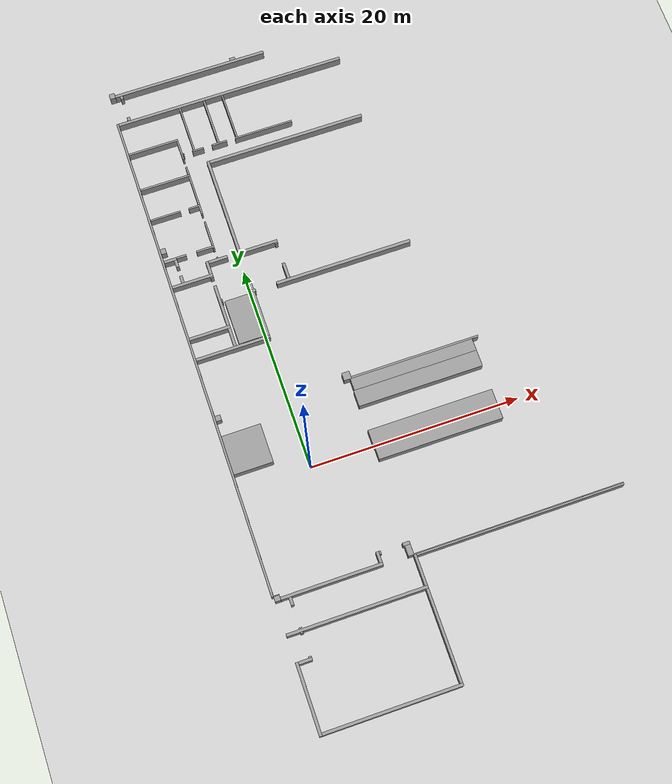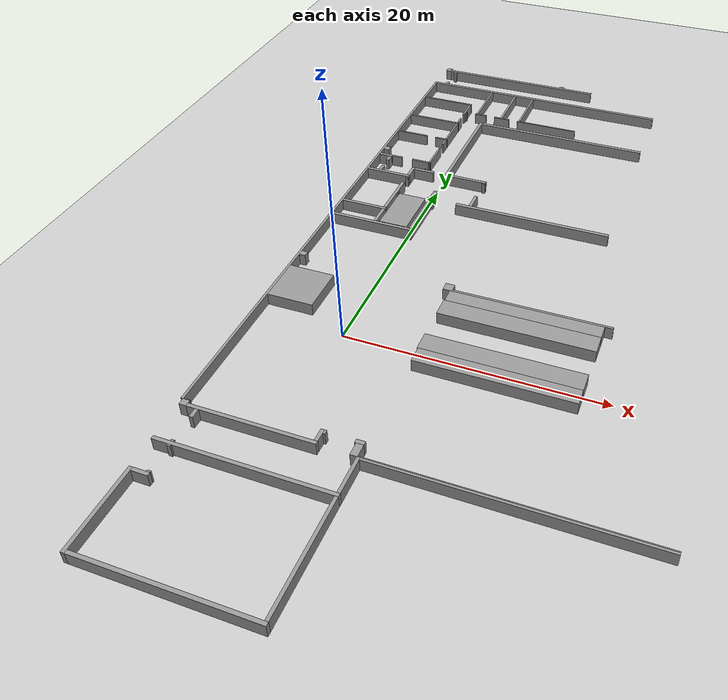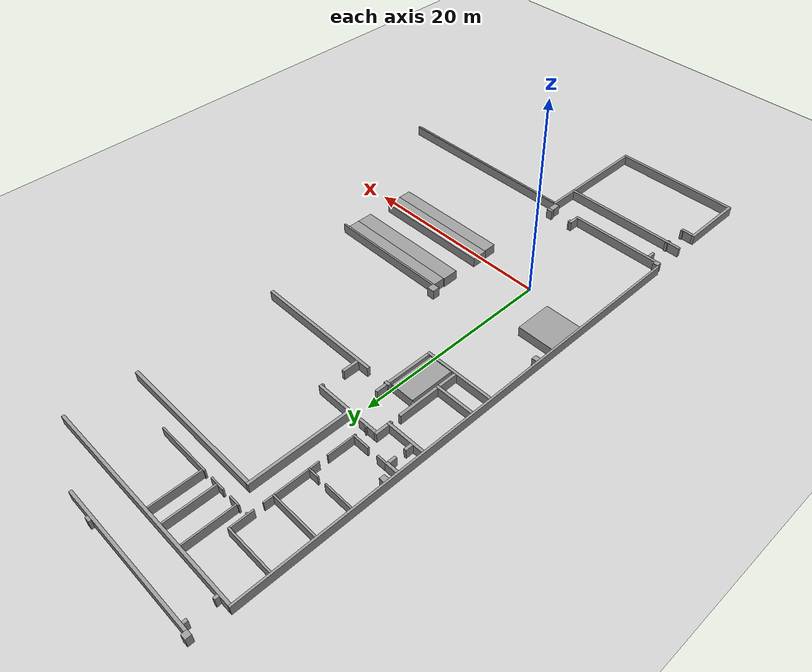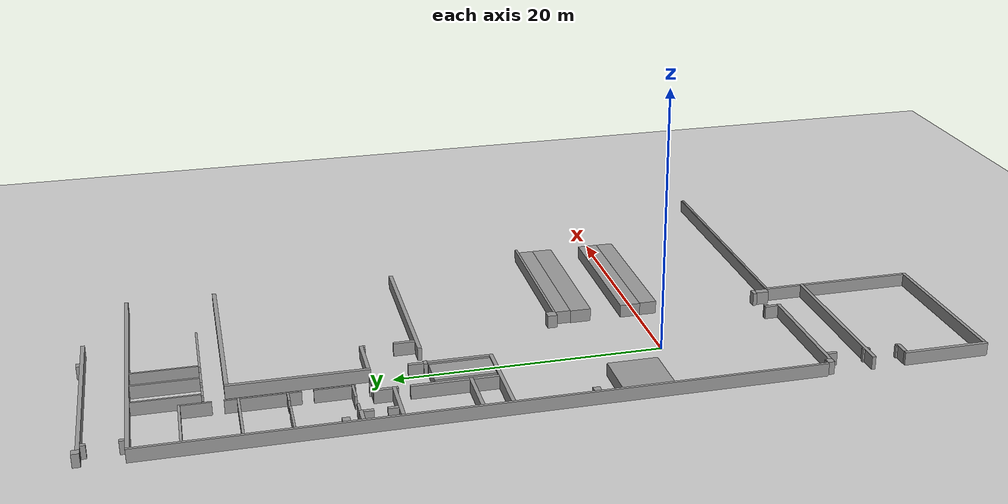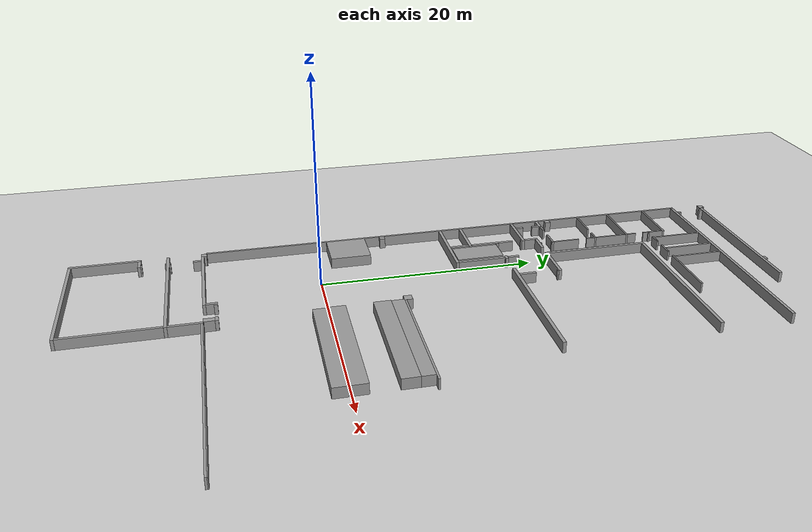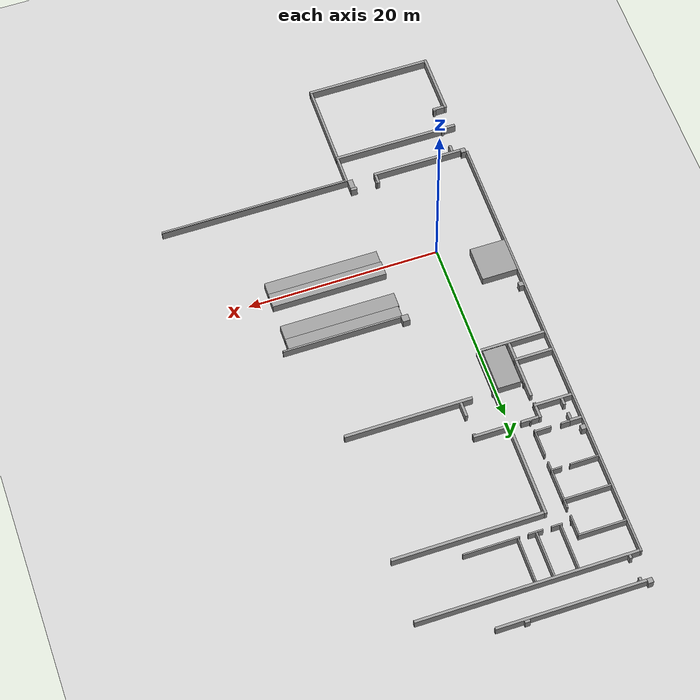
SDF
<sdf version="1.4">
 <world name="default">
  <model name="ground_plane">
   <static>1</static>
   <link name="link">
    <collision name="collision">
     <geometry><plane><normal>0 0 1</normal><size>100 100</size></plane></geometry>
     <surface><friction><ode><mu>100</mu><mu2>50</mu2></ode></friction></surface>
    </collision>
    <visual name="visual">
     <cast_shadows>0</cast_shadows>
     <geometry><plane><normal>0 0 1</normal><size>100 100</size></plane></geometry>
     <material>
      <script><uri>file://media/materials/scripts/gazebo.material</uri><name>Gazebo/Grey</name></script>
     </material>
    </visual>
    <velocity_decay><linear>0</linear><angular>0</angular></velocity_decay>
   </link>
  </model>
  <model name="walls">
   <static>1</static>
   <link name="Wall_0">
    <collision name="Wall_0_Collision">
     <geometry><box><size>48.5106 0.20426 1</size></box></geometry>
     <pose>36.8426 -0.10213 0.5 0 -0 0</pose>
    </collision>
    <visual name="Wall_0_Visual">
     <geometry><box><size>48.5106 0.20426 1</size></box></geometry>
     <material>
      <script><uri>file://media/materials/scripts/gazebo.material</uri><name>Gazebo/Grey</name></script>
     </material>
     <pose>36.8426 -0.10213 0.5 0 -0 0</pose>
    </visual>
    <velocity_decay><linear>0</linear><angular>0</angular></velocity_decay>
   </link>
   <link name="Wall_1">
    <collision name="Wall_1_Collision">
     <geometry><box><size>6.5617 0.28085 1</size></box></geometry>
     <pose>3.28085 -0.31915 0.5 0 -0 0</pose>
    </collision>
    <visual name="Wall_1_Visual">
     <geometry><box><size>6.5617 0.28085 1</size></box></geometry>
     <material>
      <script><uri>file://media/materials/scripts/gazebo.material</uri><name>Gazebo/Grey</name></script>
     </material>
     <pose>3.28085 -0.31915 0.5 0 -0 0</pose>
    </visual>
    <velocity_decay><linear>0</linear><angular>0</angular></velocity_decay>
   </link>
   <link name="Wall_2">
    <collision name="Wall_2_Collision">
     <geometry><box><size>0.28085 13.0723 1</size></box></geometry>
     <pose>9.02553 -6.71489 0.5 0 -0 0</pose>
    </collision>
    <visual name="Wall_2_Visual">
     <geometry><box><size>0.28085 13.0723 1</size></box></geometry>
     <material>
      <script><uri>file://media/materials/scripts/gazebo.material</uri><name>Gazebo/Grey</name></script>
     </material>
     <pose>9.02553 -6.71489 0.5 0 -0 0</pose>
    </visual>
    <velocity_decay><linear>0</linear><angular>0</angular></velocity_decay>
   </link>
   <link name="Wall_3">
    <collision name="Wall_3_Collision">
     <geometry><box><size>0.51064 0.53617 1</size></box></geometry>
     <pose>12.3319 -0.44681 0.5 0 -0 0</pose>
    </collision>
    <visual name="Wall_3_Visual">
     <geometry><box><size>0.51064 0.53617 1</size></box></geometry>
     <material>
      <script><uri>file://media/materials/scripts/gazebo.material</uri><name>Gazebo/Grey</name></script>
     </material>
     <pose>12.3319 -0.44681 0.5 0 -0 0</pose>
    </visual>
    <velocity_decay><linear>0</linear><angular>0</angular></velocity_decay>
   </link>
   <link name="Wall_4">
    <collision name="Wall_4_Collision">
     <geometry><box><size>0.53617 0.53617 1</size></box></geometry>
     <pose>64.1745 -0.44681 0.5 0 -0 0</pose>
    </collision>
    <visual name="Wall_4_Visual">
     <geometry><box><size>0.53617 0.53617 1</size></box></geometry>
     <material>
      <script><uri>file://media/materials/scripts/gazebo.material</uri><name>Gazebo/Grey</name></script>
     </material>
     <pose>64.1745 -0.44681 0.5 0 -0 0</pose>
    </visual>
    <velocity_decay><linear>0</linear><angular>0</angular></velocity_decay>
   </link>
   <link name="Wall_5">
    <collision name="Wall_5_Collision">
     <geometry><box><size>0.05106 0.51064 1</size></box></geometry>
     <pose>12.6128 -0.45957 0.5 0 -0 0</pose>
    </collision>
    <visual name="Wall_5_Visual">
     <geometry><box><size>0.05106 0.51064 1</size></box></geometry>
     <material>
      <script><uri>file://media/materials/scripts/gazebo.material</uri><name>Gazebo/Grey</name></script>
     </material>
     <pose>12.6128 -0.45957 0.5 0 -0 0</pose>
    </visual>
    <velocity_decay><linear>0</linear><angular>0</angular></velocity_decay>
   </link>
   <link name="Wall_6">
    <collision name="Wall_6_Collision">
     <geometry><box><size>3.77872 3.72766 1</size></box></geometry>
     <pose>25.9915 -2.06809 0.5 0 -0 0</pose>
    </collision>
    <visual name="Wall_6_Visual">
     <geometry><box><size>3.77872 3.72766 1</size></box></geometry>
     <material>
      <script><uri>file://media/materials/scripts/gazebo.material</uri><name>Gazebo/Grey</name></script>
     </material>
     <pose>25.9915 -2.06809 0.5 0 -0 0</pose>
    </visual>
    <velocity_decay><linear>0</linear><angular>0</angular></velocity_decay>
   </link>
   <link name="Wall_7">
    <collision name="Wall_7_Collision">
     <geometry><box><size>0.51064 0.51064 1</size></box></geometry>
     <pose>29.617 -0.45957 0.5 0 -0 0</pose>
    </collision>
    <visual name="Wall_7_Visual">
     <geometry><box><size>0.51064 0.51064 1</size></box></geometry>
     <material>
      <script><uri>file://media/materials/scripts/gazebo.material</uri><name>Gazebo/Grey</name></script>
     </material>
     <pose>29.617 -0.45957 0.5 0 -0 0</pose>
    </visual>
    <velocity_decay><linear>0</linear><angular>0</angular></velocity_decay>
   </link>
   <link name="Wall_8">
    <collision name="Wall_8_Collision">
     <geometry><box><size>0.28085 7.14894 1</size></box></geometry>
     <pose>35.5787 -3.77872 0.5 0 -0 0</pose>
    </collision>
    <visual name="Wall_8_Visual">
     <geometry><box><size>0.28085 7.14894 1</size></box></geometry>
     <material>
      <script><uri>file://media/materials/scripts/gazebo.material</uri><name>Gazebo/Grey</name></script>
     </material>
     <pose>35.5787 -3.77872 0.5 0 -0 0</pose>
    </visual>
    <velocity_decay><linear>0</linear><angular>0</angular></velocity_decay>
   </link>
   <link name="Wall_9">
    <collision name="Wall_9_Collision">
     <geometry><box><size>0.28085 3.95745 1</size></box></geometry>
     <pose>37.6979 -2.18298 0.5 0 -0 0</pose>
    </collision>
    <visual name="Wall_9_Visual">
     <geometry><box><size>0.28085 3.95745 1</size></box></geometry>
     <material>
      <script><uri>file://media/materials/scripts/gazebo.material</uri><name>Gazebo/Grey</name></script>
     </material>
     <pose>37.6979 -2.18298 0.5 0 -0 0</pose>
    </visual>
    <velocity_decay><linear>0</linear><angular>0</angular></velocity_decay>
   </link>
   <link name="Wall_10">
    <collision name="Wall_10_Collision">
     <geometry><box><size>0.28085 3.95745 1</size></box></geometry>
     <pose>43.1106 -2.18298 0.5 0 -0 0</pose>
    </collision>
    <visual name="Wall_10_Visual">
     <geometry><box><size>0.28085 3.95745 1</size></box></geometry>
     <material>
      <script><uri>file://media/materials/scripts/gazebo.material</uri><name>Gazebo/Grey</name></script>
     </material>
     <pose>43.1106 -2.18298 0.5 0 -0 0</pose>
    </visual>
    <velocity_decay><linear>0</linear><angular>0</angular></velocity_decay>
   </link>
   <link name="Wall_11">
    <collision name="Wall_11_Collision">
     <geometry><box><size>0.28085 1.22553 1</size></box></geometry>
     <pose>45.7915 -0.81702 0.5 0 -0 0</pose>
    </collision>
    <visual name="Wall_11_Visual">
     <geometry><box><size>0.28085 1.22553 1</size></box></geometry>
     <material>
      <script><uri>file://media/materials/scripts/gazebo.material</uri><name>Gazebo/Grey</name></script>
     </material>
     <pose>45.7915 -0.81702 0.5 0 -0 0</pose>
    </visual>
    <velocity_decay><linear>0</linear><angular>0</angular></velocity_decay>
   </link>
   <link name="Wall_12">
    <collision name="Wall_12_Collision">
     <geometry><box><size>0.53617 0.51064 1</size></box></geometry>
     <pose>46.8894 -0.45957 0.5 0 -0 0</pose>
    </collision>
    <visual name="Wall_12_Visual">
     <geometry><box><size>0.53617 0.51064 1</size></box></geometry>
     <material>
      <script><uri>file://media/materials/scripts/gazebo.material</uri><name>Gazebo/Grey</name></script>
     </material>
     <pose>46.8894 -0.45957 0.5 0 -0 0</pose>
    </visual>
    <velocity_decay><linear>0</linear><angular>0</angular></velocity_decay>
   </link>
   <link name="Wall_13">
    <collision name="Wall_13_Collision">
     <geometry><box><size>0.15319 2.9617 1</size></box></geometry>
     <pose>50.2979 -1.68511 0.5 0 -0 0</pose>
    </collision>
    <visual name="Wall_13_Visual">
     <geometry><box><size>0.15319 2.9617 1</size></box></geometry>
     <material>
      <script><uri>file://media/materials/scripts/gazebo.material</uri><name>Gazebo/Grey</name></script>
     </material>
     <pose>50.2979 -1.68511 0.5 0 -0 0</pose>
    </visual>
    <velocity_decay><linear>0</linear><angular>0</angular></velocity_decay>
   </link>
   <link name="Wall_14">
    <collision name="Wall_14_Collision">
     <geometry><box><size>0.17872 4.92766 1</size></box></geometry>
     <pose>53.6298 -2.66809 0.5 0 -0 0</pose>
    </collision>
    <visual name="Wall_14_Visual">
     <geometry><box><size>0.17872 4.92766 1</size></box></geometry>
     <material>
      <script><uri>file://media/materials/scripts/gazebo.material</uri><name>Gazebo/Grey</name></script>
     </material>
     <pose>53.6298 -2.66809 0.5 0 -0 0</pose>
    </visual>
    <velocity_decay><linear>0</linear><angular>0</angular></velocity_decay>
   </link>
   <link name="Wall_15">
    <collision name="Wall_15_Collision">
     <geometry><box><size>0.17872 4.92766 1</size></box></geometry>
     <pose>57.5872 -2.66809 0.5 0 -0 0</pose>
    </collision>
    <visual name="Wall_15_Visual">
     <geometry><box><size>0.17872 4.92766 1</size></box></geometry>
     <material>
      <script><uri>file://media/materials/scripts/gazebo.material</uri><name>Gazebo/Grey</name></script>
     </material>
     <pose>57.5872 -2.66809 0.5 0 -0 0</pose>
    </visual>
    <velocity_decay><linear>0</linear><angular>0</angular></velocity_decay>
   </link>
   <link name="Wall_16">
    <collision name="Wall_16_Collision">
     <geometry><box><size>0.28085 22.5702 1</size></box></geometry>
     <pose>60.9575 -11.4894 0.5 0 -0 0</pose>
    </collision>
    <visual name="Wall_16_Visual">
     <geometry><box><size>0.28085 22.5702 1</size></box></geometry>
     <material>
      <script><uri>file://media/materials/scripts/gazebo.material</uri><name>Gazebo/Grey</name></script>
     </material>
     <pose>60.9575 -11.4894 0.5 0 -0 0</pose>
    </visual>
    <velocity_decay><linear>0</linear><angular>0</angular></velocity_decay>
   </link>
   <link name="Wall_17">
    <collision name="Wall_17_Collision">
     <geometry><box><size>0.28085 12.7915 1</size></box></geometry>
     <pose>0.14043 -6.85532 0.5 0 -0 0</pose>
    </collision>
    <visual name="Wall_17_Visual">
     <geometry><box><size>0.28085 12.7915 1</size></box></geometry>
     <material>
      <script><uri>file://media/materials/scripts/gazebo.material</uri><name>Gazebo/Grey</name></script>
     </material>
     <pose>0.14043 -6.85532 0.5 0 -0 0</pose>
    </visual>
    <velocity_decay><linear>0</linear><angular>0</angular></velocity_decay>
   </link>
   <link name="Wall_18">
    <collision name="Wall_18_Collision">
     <geometry><box><size>0.28085 1.22553 1</size></box></geometry>
     <pose>6.42128 -1.07234 0.5 0 -0 0</pose>
    </collision>
    <visual name="Wall_18_Visual">
     <geometry><box><size>0.28085 1.22553 1</size></box></geometry>
     <material>
      <script><uri>file://media/materials/scripts/gazebo.material</uri><name>Gazebo/Grey</name></script>
     </material>
     <pose>6.42128 -1.07234 0.5 0 -0 0</pose>
    </visual>
    <velocity_decay><linear>0</linear><angular>0</angular></velocity_decay>
   </link>
   <link name="Wall_19">
    <collision name="Wall_19_Collision">
     <geometry><box><size>0.28085 9.47234 1</size></box></geometry>
     <pose>12.217 -5.45106 0.5 0 -0 0</pose>
    </collision>
    <visual name="Wall_19_Visual">
     <geometry><box><size>0.28085 9.47234 1</size></box></geometry>
     <material>
      <script><uri>file://media/materials/scripts/gazebo.material</uri><name>Gazebo/Grey</name></script>
     </material>
     <pose>12.217 -5.45106 0.5 0 -0 0</pose>
    </visual>
    <velocity_decay><linear>0</linear><angular>0</angular></velocity_decay>
   </link>
   <link name="Wall_20">
    <collision name="Wall_20_Collision">
     <geometry><box><size>0.28085 15.166 1</size></box></geometry>
     <pose>64.0468 -8.29787 0.5 0 -0 0</pose>
    </collision>
    <visual name="Wall_20_Visual">
     <geometry><box><size>0.28085 15.166 1</size></box></geometry>
     <material>
      <script><uri>file://media/materials/scripts/gazebo.material</uri><name>Gazebo/Grey</name></script>
     </material>
     <pose>64.0468 -8.29787 0.5 0 -0 0</pose>
    </visual>
    <velocity_decay><linear>0</linear><angular>0</angular></velocity_decay>
   </link>
   <link name="Wall_21">
    <collision name="Wall_21_Collision">
     <geometry><box><size>0.74043 0.28085 1</size></box></geometry>
     <pose>43.6213 -1.28936 0.5 0 -0 0</pose>
    </collision>
    <visual name="Wall_21_Visual">
     <geometry><box><size>0.74043 0.28085 1</size></box></geometry>
     <material>
      <script><uri>file://media/materials/scripts/gazebo.material</uri><name>Gazebo/Grey</name></script>
     </material>
     <pose>43.6213 -1.28936 0.5 0 -0 0</pose>
    </visual>
    <velocity_decay><linear>0</linear><angular>0</angular></velocity_decay>
   </link>
   <link name="Wall_22">
    <collision name="Wall_22_Collision">
     <geometry><box><size>0.71489 0.28085 1</size></box></geometry>
     <pose>45.2936 -1.28936 0.5 0 -0 0</pose>
    </collision>
    <visual name="Wall_22_Visual">
     <geometry><box><size>0.71489 0.28085 1</size></box></geometry>
     <material>
      <script><uri>file://media/materials/scripts/gazebo.material</uri><name>Gazebo/Grey</name></script>
     </material>
     <pose>45.2936 -1.28936 0.5 0 -0 0</pose>
    </visual>
    <velocity_decay><linear>0</linear><angular>0</angular></velocity_decay>
   </link>
   <link name="Wall_23">
    <collision name="Wall_23_Collision">
     <geometry><box><size>0.38298 0.28085 1</size></box></geometry>
     <pose>61.2894 -1.28936 0.5 0 -0 0</pose>
    </collision>
    <visual name="Wall_23_Visual">
     <geometry><box><size>0.38298 0.28085 1</size></box></geometry>
     <material>
      <script><uri>file://media/materials/scripts/gazebo.material</uri><name>Gazebo/Grey</name></script>
     </material>
     <pose>61.2894 -1.28936 0.5 0 -0 0</pose>
    </visual>
    <velocity_decay><linear>0</linear><angular>0</angular></velocity_decay>
   </link>
   <link name="Wall_24">
    <collision name="Wall_24_Collision">
     <geometry><box><size>0.35745 0.28085 1</size></box></geometry>
     <pose>63.7277 -1.28936 0.5 0 -0 0</pose>
    </collision>
    <visual name="Wall_24_Visual">
     <geometry><box><size>0.35745 0.28085 1</size></box></geometry>
     <material>
      <script><uri>file://media/materials/scripts/gazebo.material</uri><name>Gazebo/Grey</name></script>
     </material>
     <pose>63.7277 -1.28936 0.5 0 -0 0</pose>
    </visual>
    <velocity_decay><linear>0</linear><angular>0</angular></velocity_decay>
   </link>
   <link name="Wall_25">
    <collision name="Wall_25_Collision">
     <geometry><box><size>0.12766 0.28085 1</size></box></geometry>
     <pose>6.62553 -1.54468 0.5 0 -0 0</pose>
    </collision>
    <visual name="Wall_25_Visual">
     <geometry><box><size>0.12766 0.28085 1</size></box></geometry>
     <material>
      <script><uri>file://media/materials/scripts/gazebo.material</uri><name>Gazebo/Grey</name></script>
     </material>
     <pose>6.62553 -1.54468 0.5 0 -0 0</pose>
    </visual>
    <velocity_decay><linear>0</linear><angular>0</angular></velocity_decay>
   </link>
   <link name="Wall_26">
    <collision name="Wall_26_Collision">
     <geometry><box><size>0.12766 0.28085 1</size></box></geometry>
     <pose>8.82128 -1.54468 0.5 0 -0 0</pose>
    </collision>
    <visual name="Wall_26_Visual">
     <geometry><box><size>0.12766 0.28085 1</size></box></geometry>
     <material>
      <script><uri>file://media/materials/scripts/gazebo.material</uri><name>Gazebo/Grey</name></script>
     </material>
     <pose>8.82128 -1.54468 0.5 0 -0 0</pose>
    </visual>
    <velocity_decay><linear>0</linear><angular>0</angular></velocity_decay>
   </link>
   <link name="Wall_27">
    <collision name="Wall_27_Collision">
     <geometry><box><size>0.12766 0.28085 1</size></box></geometry>
     <pose>9.22979 -1.54468 0.5 0 -0 0</pose>
    </collision>
    <visual name="Wall_27_Visual">
     <geometry><box><size>0.12766 0.28085 1</size></box></geometry>
     <material>
      <script><uri>file://media/materials/scripts/gazebo.material</uri><name>Gazebo/Grey</name></script>
     </material>
     <pose>9.22979 -1.54468 0.5 0 -0 0</pose>
    </visual>
    <velocity_decay><linear>0</linear><angular>0</angular></velocity_decay>
   </link>
   <link name="Wall_28">
    <collision name="Wall_28_Collision">
     <geometry><box><size>0.74043 0.28085 1</size></box></geometry>
     <pose>11.7064 -1.54468 0.5 0 -0 0</pose>
    </collision>
    <visual name="Wall_28_Visual">
     <geometry><box><size>0.74043 0.28085 1</size></box></geometry>
     <material>
      <script><uri>file://media/materials/scripts/gazebo.material</uri><name>Gazebo/Grey</name></script>
     </material>
     <pose>11.7064 -1.54468 0.5 0 -0 0</pose>
    </visual>
    <velocity_decay><linear>0</linear><angular>0</angular></velocity_decay>
   </link>
   <link name="Wall_29">
    <collision name="Wall_29_Collision">
     <geometry><box><size>0.17872 0.94468 1</size></box></geometry>
     <pose>45.8426 -1.90213 0.5 0 -0 0</pose>
    </collision>
    <visual name="Wall_29_Visual">
     <geometry><box><size>0.17872 0.94468 1</size></box></geometry>
     <material>
      <script><uri>file://media/materials/scripts/gazebo.material</uri><name>Gazebo/Grey</name></script>
     </material>
     <pose>45.8426 -1.90213 0.5 0 -0 0</pose>
    </visual>
    <velocity_decay><linear>0</linear><angular>0</angular></velocity_decay>
   </link>
   <link name="Wall_30">
    <collision name="Wall_30_Collision">
     <geometry><box><size>0.17872 1.73617 1</size></box></geometry>
     <pose>45.8426 -4.26383 0.5 0 -0 0</pose>
    </collision>
    <visual name="Wall_30_Visual">
     <geometry><box><size>0.17872 1.73617 1</size></box></geometry>
     <material>
      <script><uri>file://media/materials/scripts/gazebo.material</uri><name>Gazebo/Grey</name></script>
     </material>
     <pose>45.8426 -4.26383 0.5 0 -0 0</pose>
    </visual>
    <velocity_decay><linear>0</linear><angular>0</angular></velocity_decay>
   </link>
   <link name="Wall_31">
    <collision name="Wall_31_Collision">
     <geometry><box><size>1.8383 0.28085 1</size></box></geometry>
     <pose>36.6383 -4.02128 0.5 0 -0 0</pose>
    </collision>
    <visual name="Wall_31_Visual">
     <geometry><box><size>1.8383 0.28085 1</size></box></geometry>
     <material>
      <script><uri>file://media/materials/scripts/gazebo.material</uri><name>Gazebo/Grey</name></script>
     </material>
     <pose>36.6383 -4.02128 0.5 0 -0 0</pose>
    </visual>
    <velocity_decay><linear>0</linear><angular>0</angular></velocity_decay>
   </link>
   <link name="Wall_32">
    <collision name="Wall_32_Collision">
     <geometry><box><size>4.1617 0.28085 1</size></box></geometry>
     <pose>39.9192 -4.02128 0.5 0 -0 0</pose>
    </collision>
    <visual name="Wall_32_Visual">
     <geometry><box><size>4.1617 0.28085 1</size></box></geometry>
     <material>
      <script><uri>file://media/materials/scripts/gazebo.material</uri><name>Gazebo/Grey</name></script>
     </material>
     <pose>39.9192 -4.02128 0.5 0 -0 0</pose>
    </visual>
    <velocity_decay><linear>0</linear><angular>0</angular></velocity_decay>
   </link>
   <link name="Wall_33">
    <collision name="Wall_33_Collision">
     <geometry><box><size>0.12766 0.28085 1</size></box></geometry>
     <pose>42.9064 -4.02128 0.5 0 -0 0</pose>
    </collision>
    <visual name="Wall_33_Visual">
     <geometry><box><size>0.12766 0.28085 1</size></box></geometry>
     <material>
      <script><uri>file://media/materials/scripts/gazebo.material</uri><name>Gazebo/Grey</name></script>
     </material>
     <pose>42.9064 -4.02128 0.5 0 -0 0</pose>
    </visual>
    <velocity_decay><linear>0</linear><angular>0</angular></velocity_decay>
   </link>
   <link name="Wall_34">
    <collision name="Wall_34_Collision">
     <geometry><box><size>1.32766 0.28085 1</size></box></geometry>
     <pose>43.9149 -4.02128 0.5 0 -0 0</pose>
    </collision>
    <visual name="Wall_34_Visual">
     <geometry><box><size>1.32766 0.28085 1</size></box></geometry>
     <material>
      <script><uri>file://media/materials/scripts/gazebo.material</uri><name>Gazebo/Grey</name></script>
     </material>
     <pose>43.9149 -4.02128 0.5 0 -0 0</pose>
    </visual>
    <velocity_decay><linear>0</linear><angular>0</angular></velocity_decay>
   </link>
   <link name="Wall_35">
    <collision name="Wall_35_Collision">
     <geometry><box><size>0.15319 1.14894 1</size></box></geometry>
     <pose>50.2979 -4.55745 0.5 0 -0 0</pose>
    </collision>
    <visual name="Wall_35_Visual">
     <geometry><box><size>0.15319 1.14894 1</size></box></geometry>
     <material>
      <script><uri>file://media/materials/scripts/gazebo.material</uri><name>Gazebo/Grey</name></script>
     </material>
     <pose>50.2979 -4.55745 0.5 0 -0 0</pose>
    </visual>
    <velocity_decay><linear>0</linear><angular>0</angular></velocity_decay>
   </link>
   <link name="Wall_36">
    <collision name="Wall_36_Collision">
     <geometry><box><size>0.28085 0.10213 1</size></box></geometry>
     <pose>40.3787 -4.21277 0.5 0 -0 0</pose>
    </collision>
    <visual name="Wall_36_Visual">
     <geometry><box><size>0.28085 0.10213 1</size></box></geometry>
     <material>
      <script><uri>file://media/materials/scripts/gazebo.material</uri><name>Gazebo/Grey</name></script>
     </material>
     <pose>40.3787 -4.21277 0.5 0 -0 0</pose>
    </visual>
    <velocity_decay><linear>0</linear><angular>0</angular></velocity_decay>
   </link>
   <link name="Wall_37">
    <collision name="Wall_37_Collision">
     <geometry><box><size>0.28085 1.8383 1</size></box></geometry>
     <pose>44.4383 -5.08085 0.5 0 -0 0</pose>
    </collision>
    <visual name="Wall_37_Visual">
     <geometry><box><size>0.28085 1.8383 1</size></box></geometry>
     <material>
      <script><uri>file://media/materials/scripts/gazebo.material</uri><name>Gazebo/Grey</name></script>
     </material>
     <pose>44.4383 -5.08085 0.5 0 -0 0</pose>
    </visual>
    <velocity_decay><linear>0</linear><angular>0</angular></velocity_decay>
   </link>
   <link name="Wall_38">
    <collision name="Wall_38_Collision">
     <geometry><box><size>4.44255 2.4 1</size></box></geometry>
     <pose>37.9915 -5.61702 0.5 0 -0 0</pose>
    </collision>
    <visual name="Wall_38_Visual">
     <geometry><box><size>4.44255 2.4 1</size></box></geometry>
     <material>
      <script><uri>file://media/materials/scripts/gazebo.material</uri><name>Gazebo/Grey</name></script>
     </material>
     <pose>37.9915 -5.61702 0.5 0 -0 0</pose>
    </visual>
    <velocity_decay><linear>0</linear><angular>0</angular></velocity_decay>
   </link>
   <link name="Wall_39">
    <collision name="Wall_39_Collision">
     <geometry><box><size>0.12766 0.15319 1</size></box></geometry>
     <pose>44.6425 -5.05532 0.5 0 -0 0</pose>
    </collision>
    <visual name="Wall_39_Visual">
     <geometry><box><size>0.12766 0.15319 1</size></box></geometry>
     <material>
      <script><uri>file://media/materials/scripts/gazebo.material</uri><name>Gazebo/Grey</name></script>
     </material>
     <pose>44.6425 -5.05532 0.5 0 -0 0</pose>
    </visual>
    <velocity_decay><linear>0</linear><angular>0</angular></velocity_decay>
   </link>
   <link name="Wall_40">
    <collision name="Wall_40_Collision">
     <geometry><box><size>0.10213 0.15319 1</size></box></geometry>
     <pose>45.7021 -5.05532 0.5 0 -0 0</pose>
    </collision>
    <visual name="Wall_40_Visual">
     <geometry><box><size>0.10213 0.15319 1</size></box></geometry>
     <material>
      <script><uri>file://media/materials/scripts/gazebo.material</uri><name>Gazebo/Grey</name></script>
     </material>
     <pose>45.7021 -5.05532 0.5 0 -0 0</pose>
    </visual>
    <velocity_decay><linear>0</linear><angular>0</angular></velocity_decay>
   </link>
   <link name="Wall_41">
    <collision name="Wall_41_Collision">
     <geometry><box><size>2.60426 0.15319 1</size></box></geometry>
     <pose>47.234 -5.05532 0.5 0 -0 0</pose>
    </collision>
    <visual name="Wall_41_Visual">
     <geometry><box><size>2.60426 0.15319 1</size></box></geometry>
     <material>
      <script><uri>file://media/materials/scripts/gazebo.material</uri><name>Gazebo/Grey</name></script>
     </material>
     <pose>47.234 -5.05532 0.5 0 -0 0</pose>
    </visual>
    <velocity_decay><linear>0</linear><angular>0</angular></velocity_decay>
   </link>
   <link name="Wall_42">
    <collision name="Wall_42_Collision">
     <geometry><box><size>0.86809 0.15319 1</size></box></geometry>
     <pose>49.7872 -5.05532 0.5 0 -0 0</pose>
    </collision>
    <visual name="Wall_42_Visual">
     <geometry><box><size>0.86809 0.15319 1</size></box></geometry>
     <material>
      <script><uri>file://media/materials/scripts/gazebo.material</uri><name>Gazebo/Grey</name></script>
     </material>
     <pose>49.7872 -5.05532 0.5 0 -0 0</pose>
    </visual>
    <velocity_decay><linear>0</linear><angular>0</angular></velocity_decay>
   </link>
   <link name="Wall_43">
    <collision name="Wall_43_Collision">
     <geometry><box><size>3.16596 0.15319 1</size></box></geometry>
     <pose>51.9575 -5.05532 0.5 0 -0 0</pose>
    </collision>
    <visual name="Wall_43_Visual">
     <geometry><box><size>3.16596 0.15319 1</size></box></geometry>
     <material>
      <script><uri>file://media/materials/scripts/gazebo.material</uri><name>Gazebo/Grey</name></script>
     </material>
     <pose>51.9575 -5.05532 0.5 0 -0 0</pose>
    </visual>
    <velocity_decay><linear>0</linear><angular>0</angular></velocity_decay>
   </link>
   <link name="Wall_44">
    <collision name="Wall_44_Collision">
     <geometry><box><size>0.86809 0.15319 1</size></box></geometry>
     <pose>54.1532 -5.05532 0.5 0 -0 0</pose>
    </collision>
    <visual name="Wall_44_Visual">
     <geometry><box><size>0.86809 0.15319 1</size></box></geometry>
     <material>
      <script><uri>file://media/materials/scripts/gazebo.material</uri><name>Gazebo/Grey</name></script>
     </material>
     <pose>54.1532 -5.05532 0.5 0 -0 0</pose>
    </visual>
    <velocity_decay><linear>0</linear><angular>0</angular></velocity_decay>
   </link>
   <link name="Wall_45">
    <collision name="Wall_45_Collision">
     <geometry><box><size>2.09362 0.15319 1</size></box></geometry>
     <pose>56.4511 -5.05532 0.5 0 -0 0</pose>
    </collision>
    <visual name="Wall_45_Visual">
     <geometry><box><size>2.09362 0.15319 1</size></box></geometry>
     <material>
      <script><uri>file://media/materials/scripts/gazebo.material</uri><name>Gazebo/Grey</name></script>
     </material>
     <pose>56.4511 -5.05532 0.5 0 -0 0</pose>
    </visual>
    <velocity_decay><linear>0</linear><angular>0</angular></velocity_decay>
   </link>
   <link name="Wall_46">
    <collision name="Wall_46_Collision">
     <geometry><box><size>0.15319 0.12766 1</size></box></geometry>
     <pose>55.966 -5.19574 0.5 0 -0 0</pose>
    </collision>
    <visual name="Wall_46_Visual">
     <geometry><box><size>0.15319 0.12766 1</size></box></geometry>
     <material>
      <script><uri>file://media/materials/scripts/gazebo.material</uri><name>Gazebo/Grey</name></script>
     </material>
     <pose>55.966 -5.19574 0.5 0 -0 0</pose>
    </visual>
    <velocity_decay><linear>0</linear><angular>0</angular></velocity_decay>
   </link>
   <link name="Wall_47">
    <collision name="Wall_47_Collision">
     <geometry><box><size>0.15319 1.1234 1</size></box></geometry>
     <pose>55.966 -6.66383 0.5 0 -0 0</pose>
    </collision>
    <visual name="Wall_47_Visual">
     <geometry><box><size>0.15319 1.1234 1</size></box></geometry>
     <material>
      <script><uri>file://media/materials/scripts/gazebo.material</uri><name>Gazebo/Grey</name></script>
     </material>
     <pose>55.966 -6.66383 0.5 0 -0 0</pose>
    </visual>
    <velocity_decay><linear>0</linear><angular>0</angular></velocity_decay>
   </link>
   <link name="Wall_48">
    <collision name="Wall_48_Collision">
     <geometry><box><size>4.77447 0.15319 1</size></box></geometry>
     <pose>58.4298 -6.30638 0.5 0 -0 0</pose>
    </collision>
    <visual name="Wall_48_Visual">
     <geometry><box><size>4.77447 0.15319 1</size></box></geometry>
     <material>
      <script><uri>file://media/materials/scripts/gazebo.material</uri><name>Gazebo/Grey</name></script>
     </material>
     <pose>58.4298 -6.30638 0.5 0 -0 0</pose>
    </visual>
    <velocity_decay><linear>0</linear><angular>0</angular></velocity_decay>
   </link>
   <link name="Wall_49">
    <collision name="Wall_49_Collision">
     <geometry><box><size>0.28085 0.53617 1</size></box></geometry>
     <pose>40.3787 -7.21277 0.5 0 -0 0</pose>
    </collision>
    <visual name="Wall_49_Visual">
     <geometry><box><size>0.28085 0.53617 1</size></box></geometry>
     <material>
      <script><uri>file://media/materials/scripts/gazebo.material</uri><name>Gazebo/Grey</name></script>
     </material>
     <pose>40.3787 -7.21277 0.5 0 -0 0</pose>
    </visual>
    <velocity_decay><linear>0</linear><angular>0</angular></velocity_decay>
   </link>
   <link name="Wall_50">
    <collision name="Wall_50_Collision">
     <geometry><box><size>4.51915 0.28085 1</size></box></geometry>
     <pose>37.9787 -7.21277 0.5 0 -0 0</pose>
    </collision>
    <visual name="Wall_50_Visual">
     <geometry><box><size>4.51915 0.28085 1</size></box></geometry>
     <material>
      <script><uri>file://media/materials/scripts/gazebo.material</uri><name>Gazebo/Grey</name></script>
     </material>
     <pose>37.9787 -7.21277 0.5 0 -0 0</pose>
    </visual>
    <velocity_decay><linear>0</linear><angular>0</angular></velocity_decay>
   </link>
   <link name="Wall_51">
    <collision name="Wall_51_Collision">
     <geometry><box><size>1.09787 0.28085 1</size></box></geometry>
     <pose>41.0681 -7.21277 0.5 0 -0 0</pose>
    </collision>
    <visual name="Wall_51_Visual">
     <geometry><box><size>1.09787 0.28085 1</size></box></geometry>
     <material>
      <script><uri>file://media/materials/scripts/gazebo.material</uri><name>Gazebo/Grey</name></script>
     </material>
     <pose>41.0681 -7.21277 0.5 0 -0 0</pose>
    </visual>
    <velocity_decay><linear>0</linear><angular>0</angular></velocity_decay>
   </link>
   <link name="Wall_52">
    <collision name="Wall_52_Collision">
     <geometry><box><size>10.1617 0.28085 1</size></box></geometry>
     <pose>49.3787 -7.21277 0.5 0 -0 0</pose>
    </collision>
    <visual name="Wall_52_Visual">
     <geometry><box><size>10.1617 0.28085 1</size></box></geometry>
     <material>
      <script><uri>file://media/materials/scripts/gazebo.material</uri><name>Gazebo/Grey</name></script>
     </material>
     <pose>49.3787 -7.21277 0.5 0 -0 0</pose>
    </visual>
    <velocity_decay><linear>0</linear><angular>0</angular></velocity_decay>
   </link>
   <link name="Wall_53">
    <collision name="Wall_53_Collision">
     <geometry><box><size>0.02553 0.12766 1</size></box></geometry>
     <pose>40.2255 -7.41702 0.5 0 -0 0</pose>
    </collision>
    <visual name="Wall_53_Visual">
     <geometry><box><size>0.02553 0.12766 1</size></box></geometry>
     <material>
      <script><uri>file://media/materials/scripts/gazebo.material</uri><name>Gazebo/Grey</name></script>
     </material>
     <pose>40.2255 -7.41702 0.5 0 -0 0</pose>
    </visual>
    <velocity_decay><linear>0</linear><angular>0</angular></velocity_decay>
   </link>
   <link name="Wall_54">
    <collision name="Wall_54_Collision">
     <geometry><box><size>0.28085 3.57447 1</size></box></geometry>
     <pose>44.4383 -9.14043 0.5 0 -0 0</pose>
    </collision>
    <visual name="Wall_54_Visual">
     <geometry><box><size>0.28085 3.57447 1</size></box></geometry>
     <material>
      <script><uri>file://media/materials/scripts/gazebo.material</uri><name>Gazebo/Grey</name></script>
     </material>
     <pose>44.4383 -9.14043 0.5 0 -0 0</pose>
    </visual>
    <velocity_decay><linear>0</linear><angular>0</angular></velocity_decay>
   </link>
   <link name="Wall_55">
    <collision name="Wall_55_Collision">
     <geometry><box><size>0.30638 15.4213 1</size></box></geometry>
     <pose>54.3064 -15.0638 0.5 0 -0 0</pose>
    </collision>
    <visual name="Wall_55_Visual">
     <geometry><box><size>0.30638 15.4213 1</size></box></geometry>
     <material>
      <script><uri>file://media/materials/scripts/gazebo.material</uri><name>Gazebo/Grey</name></script>
     </material>
     <pose>54.3064 -15.0638 0.5 0 -0 0</pose>
    </visual>
    <velocity_decay><linear>0</linear><angular>0</angular></velocity_decay>
   </link>
   <link name="Wall_56">
    <collision name="Wall_56_Collision">
     <geometry><box><size>0.15319 1.50638 1</size></box></geometry>
     <pose>55.966 -8.82128 0.5 0 -0 0</pose>
    </collision>
    <visual name="Wall_56_Visual">
     <geometry><box><size>0.15319 1.50638 1</size></box></geometry>
     <material>
      <script><uri>file://media/materials/scripts/gazebo.material</uri><name>Gazebo/Grey</name></script>
     </material>
     <pose>55.966 -8.82128 0.5 0 -0 0</pose>
    </visual>
    <velocity_decay><linear>0</linear><angular>0</angular></velocity_decay>
   </link>
   <link name="Wall_57">
    <collision name="Wall_57_Collision">
     <geometry><box><size>4.77447 0.17872 1</size></box></geometry>
     <pose>58.4298 -8.77021 0.5 0 -0 0</pose>
    </collision>
    <visual name="Wall_57_Visual">
     <geometry><box><size>4.77447 0.17872 1</size></box></geometry>
     <material>
      <script><uri>file://media/materials/scripts/gazebo.material</uri><name>Gazebo/Grey</name></script>
     </material>
     <pose>58.4298 -8.77021 0.5 0 -0 0</pose>
    </visual>
    <velocity_decay><linear>0</linear><angular>0</angular></velocity_decay>
   </link>
   <link name="Wall_58">
    <collision name="Wall_58_Collision">
     <geometry><box><size>0.30638 13.2255 1</size></box></geometry>
     <pose>40.366 -16.1617 0.5 0 -0 0</pose>
    </collision>
    <visual name="Wall_58_Visual">
     <geometry><box><size>0.30638 13.2255 1</size></box></geometry>
     <material>
      <script><uri>file://media/materials/scripts/gazebo.material</uri><name>Gazebo/Grey</name></script>
     </material>
     <pose>40.366 -16.1617 0.5 0 -0 0</pose>
    </visual>
    <velocity_decay><linear>0</linear><angular>0</angular></velocity_decay>
   </link>
   <link name="Wall_59">
    <collision name="Wall_59_Collision">
     <geometry><box><size>1.02128 0.28085 1</size></box></geometry>
     <pose>12.8681 -10.0468 0.5 0 -0 0</pose>
    </collision>
    <visual name="Wall_59_Visual">
     <geometry><box><size>1.02128 0.28085 1</size></box></geometry>
     <material>
      <script><uri>file://media/materials/scripts/gazebo.material</uri><name>Gazebo/Grey</name></script>
     </material>
     <pose>12.8681 -10.0468 0.5 0 -0 0</pose>
    </visual>
    <velocity_decay><linear>0</linear><angular>0</angular></velocity_decay>
   </link>
   <link name="Wall_60">
    <collision name="Wall_60_Collision">
     <geometry><box><size>0.33191 0.15319 1</size></box></geometry>
     <pose>13.2128 -10.2638 0.5 0 -0 0</pose>
    </collision>
    <visual name="Wall_60_Visual">
     <geometry><box><size>0.33191 0.15319 1</size></box></geometry>
     <material>
      <script><uri>file://media/materials/scripts/gazebo.material</uri><name>Gazebo/Grey</name></script>
     </material>
     <pose>13.2128 -10.2638 0.5 0 -0 0</pose>
    </visual>
    <velocity_decay><linear>0</linear><angular>0</angular></velocity_decay>
   </link>
   <link name="Wall_61">
    <collision name="Wall_61_Collision">
     <geometry><box><size>0.15319 5.74468 1</size></box></geometry>
     <pose>55.966 -13.2894 0.5 0 -0 0</pose>
    </collision>
    <visual name="Wall_61_Visual">
     <geometry><box><size>0.15319 5.74468 1</size></box></geometry>
     <material>
      <script><uri>file://media/materials/scripts/gazebo.material</uri><name>Gazebo/Grey</name></script>
     </material>
     <pose>55.966 -13.2894 0.5 0 -0 0</pose>
    </visual>
    <velocity_decay><linear>0</linear><angular>0</angular></velocity_decay>
   </link>
   <link name="Wall_62">
    <collision name="Wall_62_Collision">
     <geometry><box><size>4.77447 0.15319 1</size></box></geometry>
     <pose>58.4298 -10.6213 0.5 0 -0 0</pose>
    </collision>
    <visual name="Wall_62_Visual">
     <geometry><box><size>4.77447 0.15319 1</size></box></geometry>
     <material>
      <script><uri>file://media/materials/scripts/gazebo.material</uri><name>Gazebo/Grey</name></script>
     </material>
     <pose>58.4298 -10.6213 0.5 0 -0 0</pose>
    </visual>
    <velocity_decay><linear>0</linear><angular>0</angular></velocity_decay>
   </link>
   <link name="Wall_63">
    <collision name="Wall_63_Collision">
     <geometry><box><size>1.58298 0.28085 1</size></box></geometry>
     <pose>41.3106 -10.7872 0.5 0 -0 0</pose>
    </collision>
    <visual name="Wall_63_Visual">
     <geometry><box><size>1.58298 0.28085 1</size></box></geometry>
     <material>
      <script><uri>file://media/materials/scripts/gazebo.material</uri><name>Gazebo/Grey</name></script>
     </material>
     <pose>41.3106 -10.7872 0.5 0 -0 0</pose>
    </visual>
    <velocity_decay><linear>0</linear><angular>0</angular></velocity_decay>
   </link>
   <link name="Wall_64">
    <collision name="Wall_64_Collision">
     <geometry><box><size>0.12766 0.28085 1</size></box></geometry>
     <pose>44.234 -10.7872 0.5 0 -0 0</pose>
    </collision>
    <visual name="Wall_64_Visual">
     <geometry><box><size>0.12766 0.28085 1</size></box></geometry>
     <material>
      <script><uri>file://media/materials/scripts/gazebo.material</uri><name>Gazebo/Grey</name></script>
     </material>
     <pose>44.234 -10.7872 0.5 0 -0 0</pose>
    </visual>
    <velocity_decay><linear>0</linear><angular>0</angular></velocity_decay>
   </link>
   <link name="Wall_65">
    <collision name="Wall_65_Collision">
     <geometry><box><size>0.30638 0.66383 1</size></box></geometry>
     <pose>13.2255 -12.7149 0.5 0 -0 0</pose>
    </collision>
    <visual name="Wall_65_Visual">
     <geometry><box><size>0.30638 0.66383 1</size></box></geometry>
     <material>
      <script><uri>file://media/materials/scripts/gazebo.material</uri><name>Gazebo/Grey</name></script>
     </material>
     <pose>13.2255 -12.7149 0.5 0 -0 0</pose>
    </visual>
    <velocity_decay><linear>0</linear><angular>0</angular></velocity_decay>
   </link>
   <link name="Wall_66">
    <collision name="Wall_66_Collision">
     <geometry><box><size>0.74043 0.74043 1</size></box></geometry>
     <pose>29.6298 -12.7787 0.5 0 -0 0</pose>
    </collision>
    <visual name="Wall_66_Visual">
     <geometry><box><size>0.74043 0.74043 1</size></box></geometry>
     <material>
      <script><uri>file://media/materials/scripts/gazebo.material</uri><name>Gazebo/Grey</name></script>
     </material>
     <pose>29.6298 -12.7787 0.5 0 -0 0</pose>
    </visual>
    <velocity_decay><linear>0</linear><angular>0</angular></velocity_decay>
   </link>
   <link name="Wall_67">
    <collision name="Wall_67_Collision">
     <geometry><box><size>0.99574 0.53617 1</size></box></geometry>
     <pose>12.5745 -12.7787 0.5 0 -0 0</pose>
    </collision>
    <visual name="Wall_67_Visual">
     <geometry><box><size>0.99574 0.53617 1</size></box></geometry>
     <material>
      <script><uri>file://media/materials/scripts/gazebo.material</uri><name>Gazebo/Grey</name></script>
     </material>
     <pose>12.5745 -12.7787 0.5 0 -0 0</pose>
    </visual>
    <velocity_decay><linear>0</linear><angular>0</angular></velocity_decay>
   </link>
   <link name="Wall_68">
    <collision name="Wall_68_Collision">
     <geometry><box><size>0.25532 0.53617 1</size></box></geometry>
     <pose>64.3149 -12.7787 0.5 0 -0 0</pose>
    </collision>
    <visual name="Wall_68_Visual">
     <geometry><box><size>0.25532 0.53617 1</size></box></geometry>
     <material>
      <script><uri>file://media/materials/scripts/gazebo.material</uri><name>Gazebo/Grey</name></script>
     </material>
     <pose>64.3149 -12.7787 0.5 0 -0 0</pose>
    </visual>
    <velocity_decay><linear>0</linear><angular>0</angular></velocity_decay>
   </link>
   <link name="Wall_69">
    <collision name="Wall_69_Collision">
     <geometry><box><size>1.55745 11.9745 1</size></box></geometry>
     <pose>23.3234 -18.9064 0.5 0 -0 0</pose>
    </collision>
    <visual name="Wall_69_Visual">
     <geometry><box><size>1.55745 11.9745 1</size></box></geometry>
     <material>
      <script><uri>file://media/materials/scripts/gazebo.material</uri><name>Gazebo/Grey</name></script>
     </material>
     <pose>23.3234 -18.9064 0.5 0 -0 0</pose>
    </visual>
    <velocity_decay><linear>0</linear><angular>0</angular></velocity_decay>
   </link>
   <link name="Wall_70">
    <collision name="Wall_70_Collision">
     <geometry><box><size>1.58298 11.9745 1</size></box></geometry>
     <pose>27.2936 -18.9064 0.5 0 -0 0</pose>
    </collision>
    <visual name="Wall_70_Visual">
     <geometry><box><size>1.58298 11.9745 1</size></box></geometry>
     <material>
      <script><uri>file://media/materials/scripts/gazebo.material</uri><name>Gazebo/Grey</name></script>
     </material>
     <pose>27.2936 -18.9064 0.5 0 -0 0</pose>
    </visual>
    <velocity_decay><linear>0</linear><angular>0</angular></velocity_decay>
   </link>
   <link name="Wall_71">
    <collision name="Wall_71_Collision">
     <geometry><box><size>8.60426 0.25532 1</size></box></geometry>
     <pose>4.58298 -13.1234 0.5 0 -0 0</pose>
    </collision>
    <visual name="Wall_71_Visual">
     <geometry><box><size>8.60426 0.25532 1</size></box></geometry>
     <material>
      <script><uri>file://media/materials/scripts/gazebo.material</uri><name>Gazebo/Grey</name></script>
     </material>
     <pose>4.58298 -13.1234 0.5 0 -0 0</pose>
    </visual>
    <velocity_decay><linear>0</linear><angular>0</angular></velocity_decay>
   </link>
   <link name="Wall_72">
    <collision name="Wall_72_Collision">
     <geometry><box><size>2.91064 0.25532 1</size></box></geometry>
     <pose>10.6213 -13.1234 0.5 0 -0 0</pose>
    </collision>
    <visual name="Wall_72_Visual">
     <geometry><box><size>2.91064 0.25532 1</size></box></geometry>
     <material>
      <script><uri>file://media/materials/scripts/gazebo.material</uri><name>Gazebo/Grey</name></script>
     </material>
     <pose>10.6213 -13.1234 0.5 0 -0 0</pose>
    </visual>
    <velocity_decay><linear>0</linear><angular>0</angular></velocity_decay>
   </link>
   <link name="Wall_73">
    <collision name="Wall_73_Collision">
     <geometry><box><size>1.32766 11.8979 1</size></box></geometry>
     <pose>21.8808 -18.9447 0.5 0 -0 0</pose>
    </collision>
    <visual name="Wall_73_Visual">
     <geometry><box><size>1.32766 11.8979 1</size></box></geometry>
     <material>
      <script><uri>file://media/materials/scripts/gazebo.material</uri><name>Gazebo/Grey</name></script>
     </material>
     <pose>21.8808 -18.9447 0.5 0 -0 0</pose>
    </visual>
    <velocity_decay><linear>0</linear><angular>0</angular></velocity_decay>
   </link>
   <link name="Wall_74">
    <collision name="Wall_74_Collision">
     <geometry><box><size>1.17447 11.8979 1</size></box></geometry>
     <pose>28.6723 -18.9447 0.5 0 -0 0</pose>
    </collision>
    <visual name="Wall_74_Visual">
     <geometry><box><size>1.17447 11.8979 1</size></box></geometry>
     <material>
      <script><uri>file://media/materials/scripts/gazebo.material</uri><name>Gazebo/Grey</name></script>
     </material>
     <pose>28.6723 -18.9447 0.5 0 -0 0</pose>
    </visual>
    <velocity_decay><linear>0</linear><angular>0</angular></velocity_decay>
   </link>
   <link name="Wall_75">
    <collision name="Wall_75_Collision">
     <geometry><box><size>0.0766 19.8894 1</size></box></geometry>
     <pose>12.1149 -22.9915 0.5 0 -0 0</pose>
    </collision>
    <visual name="Wall_75_Visual">
     <geometry><box><size>0.0766 19.8894 1</size></box></geometry>
     <material>
      <script><uri>file://media/materials/scripts/gazebo.material</uri><name>Gazebo/Grey</name></script>
     </material>
     <pose>12.1149 -22.9915 0.5 0 -0 0</pose>
    </visual>
    <velocity_decay><linear>0</linear><angular>0</angular></velocity_decay>
   </link>
   <link name="Wall_76">
    <collision name="Wall_76_Collision">
     <geometry><box><size>0.17872 12.3575 1</size></box></geometry>
     <pose>29.3489 -19.3277 0.5 0 -0 0</pose>
    </collision>
    <visual name="Wall_76_Visual">
     <geometry><box><size>0.17872 12.3575 1</size></box></geometry>
     <material>
      <script><uri>file://media/materials/scripts/gazebo.material</uri><name>Gazebo/Grey</name></script>
     </material>
     <pose>29.3489 -19.3277 0.5 0 -0 0</pose>
    </visual>
    <velocity_decay><linear>0</linear><angular>0</angular></velocity_decay>
   </link>
   <link name="Wall_77">
    <collision name="Wall_77_Collision">
     <geometry><box><size>0.17872 19.6851 1</size></box></geometry>
     <pose>11.9872 -23.0936 0.5 0 -0 0</pose>
    </collision>
    <visual name="Wall_77_Visual">
     <geometry><box><size>0.17872 19.6851 1</size></box></geometry>
     <material>
      <script><uri>file://media/materials/scripts/gazebo.material</uri><name>Gazebo/Grey</name></script>
     </material>
     <pose>11.9872 -23.0936 0.5 0 -0 0</pose>
    </visual>
    <velocity_decay><linear>0</linear><angular>0</angular></velocity_decay>
   </link>
   <pose>-7 -22.75 0 0 -0 1.5708</pose>
  </model>
 </world>
</sdf>
